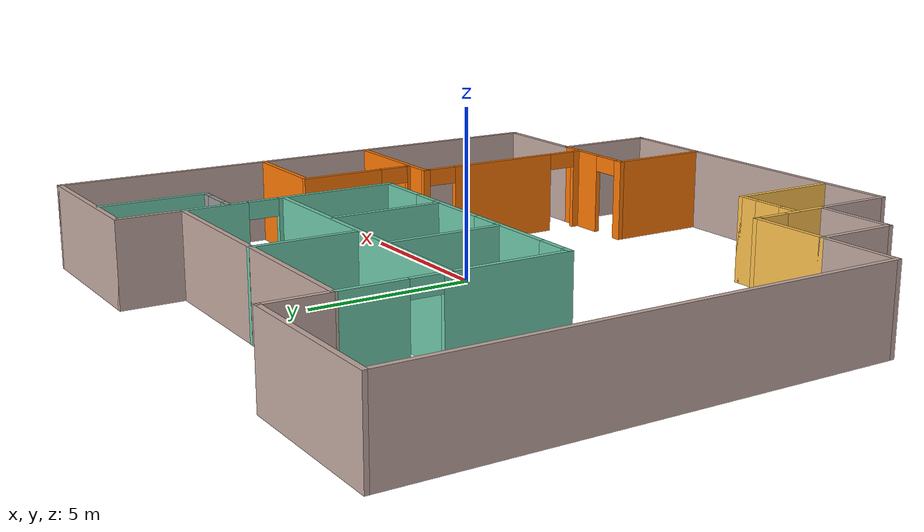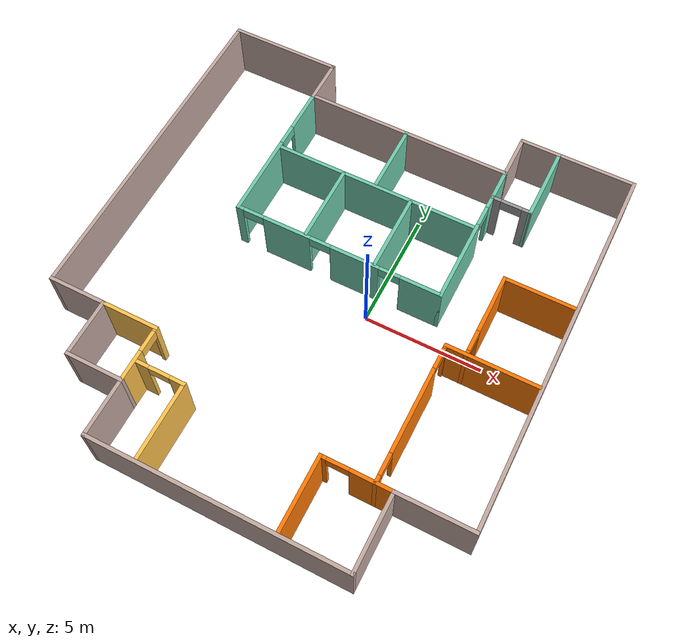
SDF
<?xml version='1.0'?>
<sdf version='1.6'>
  <model name='mybuilding'>
    <pose frame=''>-1.73634 -0.275977 0 0 -0 0</pose>
    <link name='Wall_0'>
      <collision name='Wall_0_Collision'>
        <geometry>
          <box>
            <size>4.85 0.15 2.5</size>
          </box>
        </geometry>
        <pose frame=''>0 0 1.25 0 -0 0</pose>
      </collision>
      <visual name='Wall_0_Visual'>
        <pose frame=''>0 0 1.25 0 -0 0</pose>
        <geometry>
          <box>
            <size>4.85 0.15 2.5</size>
          </box>
        </geometry>
        <material>
          <script>
            <uri>file://media/materials/scripts/gazebo.material</uri>
            <name>Gazebo/Grey</name>
          </script>
          <ambient>0.760784 0.662745 0.627451 1</ambient>
        </material>
        <meta>
          <layer>0</layer>
        </meta>
      </visual>
      <pose frame=''>-6.85 9.445 0 0 -0 0</pose>
    </link>
    <link name='Wall_1'>
      <collision name='Wall_1_Collision'>
        <geometry>
          <box>
            <size>1.92941 0.15 2.5</size>
          </box>
        </geometry>
        <pose frame=''>0 0 1.25 0 -0 0</pose>
      </collision>
      <visual name='Wall_1_Visual'>
        <pose frame=''>0 0 1.25 0 -0 0</pose>
        <geometry>
          <box>
            <size>1.92941 0.15 2.5</size>
          </box>
        </geometry>
        <material>
          <script>
            <uri>file://media/materials/scripts/gazebo.material</uri>
            <name>Gazebo/Grey</name>
          </script>
          <ambient>0.760784 0.662745 0.627451 1</ambient>
        </material>
        <meta>
          <layer>0</layer>
        </meta>
      </visual>
      <pose frame=''>-4.5 8.54529 0 0 0 -1.5708</pose>
    </link>
    <link name='Wall_10'>
      <collision name='Wall_10_Collision'>
        <geometry>
          <box>
            <size>10.75 0.15 2.5</size>
          </box>
        </geometry>
        <pose frame=''>0 0 1.25 0 -0 0</pose>
      </collision>
      <visual name='Wall_10_Visual'>
        <pose frame=''>0 0 1.25 0 -0 0</pose>
        <geometry>
          <box>
            <size>10.75 0.15 2.5</size>
          </box>
        </geometry>
        <material>
          <script>
            <uri>file://media/materials/scripts/gazebo.material</uri>
            <name>Gazebo/Grey</name>
          </script>
          <ambient>0.760784 0.662745 0.627451 1</ambient>
        </material>
        <meta>
          <layer>0</layer>
        </meta>
      </visual>
      <pose frame=''>0.8 -9.475 0 0 -0 3.14159</pose>
    </link>
    <link name='Wall_12'>
      <collision name='Wall_12_Collision'>
        <geometry>
          <box>
            <size>2.5 0.15 2.5</size>
          </box>
        </geometry>
        <pose frame=''>0 0 1.25 0 -0 0</pose>
      </collision>
      <visual name='Wall_12_Visual'>
        <pose frame=''>0 0 1.25 0 -0 0</pose>
        <geometry>
          <box>
            <size>2.5 0.15 2.5</size>
          </box>
        </geometry>
        <material>
          <script>
            <uri>file://media/materials/scripts/gazebo.material</uri>
            <name>Gazebo/Grey</name>
          </script>
          <ambient>0.760784 0.662745 0.627451 1</ambient>
        </material>
        <meta>
          <layer>0</layer>
        </meta>
      </visual>
      <pose frame=''>-4.5 -8.3 0 0 -0 1.5708</pose>
    </link>
    <link name='Wall_13'>
      <collision name='Wall_13_Collision'>
        <geometry>
          <box>
            <size>2.5 0.15 2.5</size>
          </box>
        </geometry>
        <pose frame=''>0 0 1.25 0 -0 0</pose>
      </collision>
      <visual name='Wall_13_Visual'>
        <pose frame=''>0 0 1.25 0 -0 0</pose>
        <geometry>
          <box>
            <size>2.5 0.15 2.5</size>
          </box>
        </geometry>
        <material>
          <script>
            <uri>file://media/materials/scripts/gazebo.material</uri>
            <name>Gazebo/Grey</name>
          </script>
          <ambient>0.760784 0.662745 0.627451 1</ambient>
        </material>
        <meta>
          <layer>0</layer>
        </meta>
      </visual>
      <pose frame=''>-5.675 -7.125 0 0 -0 3.14159</pose>
    </link>
    <link name='Wall_14'>
      <collision name='Wall_14_Collision'>
        <geometry>
          <box>
            <size>2.5 0.15 2.5</size>
          </box>
        </geometry>
        <pose frame=''>0 0 1.25 0 -0 0</pose>
      </collision>
      <visual name='Wall_14_Visual'>
        <pose frame=''>0 0 1.25 0 -0 0</pose>
        <geometry>
          <box>
            <size>2.5 0.15 2.5</size>
          </box>
        </geometry>
        <material>
          <script>
            <uri>file://media/materials/scripts/gazebo.material</uri>
            <name>Gazebo/Grey</name>
          </script>
          <ambient>0.760784 0.662745 0.627451 1</ambient>
        </material>
        <meta>
          <layer>0</layer>
        </meta>
      </visual>
      <pose frame=''>-6.85 -5.95 0 0 -0 1.5708</pose>
    </link>
    <link name='Wall_15'>
      <collision name='Wall_15_Collision'>
        <geometry>
          <box>
            <size>2.5 0.15 2.5</size>
          </box>
        </geometry>
        <pose frame=''>0 0 1.25 0 -0 0</pose>
      </collision>
      <visual name='Wall_15_Visual'>
        <pose frame=''>0 0 1.25 0 -0 0</pose>
        <geometry>
          <box>
            <size>2.5 0.15 2.5</size>
          </box>
        </geometry>
        <material>
          <script>
            <uri>file://media/materials/scripts/gazebo.material</uri>
            <name>Gazebo/Grey</name>
          </script>
          <ambient>0.760784 0.662745 0.627451 1</ambient>
        </material>
        <meta>
          <layer>0</layer>
        </meta>
      </visual>
      <pose frame=''>-8.025 -4.775 0 0 -0 3.14159</pose>
    </link>
    <link name='Wall_16'>
      <collision name='Wall_16_Collision'>
        <geometry>
          <box>
            <size>14.25 0.15 2.5</size>
          </box>
        </geometry>
        <pose frame=''>0 0 1.25 0 -0 0</pose>
      </collision>
      <visual name='Wall_16_Visual'>
        <pose frame=''>0 0 1.25 0 -0 0</pose>
        <geometry>
          <box>
            <size>14.25 0.15 2.5</size>
          </box>
        </geometry>
        <material>
          <script>
            <uri>file://media/materials/scripts/gazebo.material</uri>
            <name>Gazebo/Grey</name>
          </script>
          <ambient>0.760784 0.662745 0.627451 1</ambient>
        </material>
        <meta>
          <layer>0</layer>
        </meta>
      </visual>
      <pose frame=''>-9.2 2.275 0 0 -0 1.5708</pose>
    </link>
    <link name='Wall_18'>
      <collision name='Wall_18_Collision'>
        <geometry>
          <box>
            <size>2.5 0.15 2.5</size>
          </box>
        </geometry>
        <pose frame=''>0 0 1.25 0 -0 0</pose>
      </collision>
      <visual name='Wall_18_Visual'>
        <pose frame=''>0 0 1.25 0 -0 0</pose>
        <geometry>
          <box>
            <size>2.5 0.15 2.5</size>
          </box>
        </geometry>
        <material>
          <script>
            <uri>file://media/materials/scripts/gazebo.material</uri>
            <name>Gazebo/Grey</name>
          </script>
          <ambient>1 0.764706 0.305882 1</ambient>
        </material>
        <meta>
          <layer>0</layer>
        </meta>
      </visual>
      <pose frame=''>-5.675 -4.775 0 0 -0 0</pose>
    </link>
    <link name='Wall_19'>
      <pose frame=''>-4.5 -5.95 0 0 0 -1.5708</pose>
      <visual name='Wall_19_Visual_0'>
        <pose frame=''>-1.13558 0 1.25 0 -0 0</pose>
        <geometry>
          <box>
            <size>0.228848 0.15 2.5</size>
          </box>
        </geometry>
        <material>
          <script>
            <uri>file://media/materials/scripts/gazebo.material</uri>
            <name>Gazebo/Grey</name>
          </script>
          <ambient>1 0.764706 0.305882 1</ambient>
        </material>
        <meta>
          <layer>0</layer>
        </meta>
      </visual>
      <collision name='Wall_19_Collision_0'>
        <geometry>
          <box>
            <size>0.228848 0.15 2.5</size>
          </box>
        </geometry>
        <pose frame=''>-1.13558 0 1.25 0 -0 0</pose>
      </collision>
      <visual name='Wall_19_Visual_1'>
        <pose frame=''>0.564424 0 1.25 0 -0 0</pose>
        <geometry>
          <box>
            <size>1.37115 0.15 2.5</size>
          </box>
        </geometry>
        <material>
          <script>
            <uri>file://media/materials/scripts/gazebo.material</uri>
            <name>Gazebo/Grey</name>
          </script>
          <ambient>1 0.764706 0.305882 1</ambient>
        </material>
        <meta>
          <layer>0</layer>
        </meta>
      </visual>
      <collision name='Wall_19_Collision_1'>
        <geometry>
          <box>
            <size>1.37115 0.15 2.5</size>
          </box>
        </geometry>
        <pose frame=''>0.564424 0 1.25 0 -0 0</pose>
      </collision>
      <visual name='Wall_19_Visual_2'>
        <pose frame=''>-0.571152 0 2.25 0 -0 0</pose>
        <geometry>
          <box>
            <size>0.9 0.15 0.5</size>
          </box>
        </geometry>
        <material>
          <script>
            <uri>file://media/materials/scripts/gazebo.material</uri>
            <name>Gazebo/Grey</name>
          </script>
          <ambient>1 0.764706 0.305882 1</ambient>
        </material>
        <meta>
          <layer>0</layer>
        </meta>
      </visual>
      <collision name='Wall_19_Collision_2'>
        <geometry>
          <box>
            <size>0.9 0.15 0.5</size>
          </box>
        </geometry>
        <pose frame=''>-0.571152 0 2.25 0 -0 0</pose>
      </collision>
    </link>
    <link name='Wall_2'>
      <collision name='Wall_2_Collision'>
        <geometry>
          <box>
            <size>9 0.15 2.5</size>
          </box>
        </geometry>
        <pose frame=''>0 0 1.25 0 -0 0</pose>
      </collision>
      <visual name='Wall_2_Visual'>
        <pose frame=''>0 0 1.25 0 -0 0</pose>
        <geometry>
          <box>
            <size>9 0.15 2.5</size>
          </box>
        </geometry>
        <material>
          <script>
            <uri>file://media/materials/scripts/gazebo.material</uri>
            <name>Gazebo/Grey</name>
          </script>
          <ambient>0.760784 0.662745 0.627451 1</ambient>
        </material>
        <meta>
          <layer>0</layer>
        </meta>
      </visual>
      <pose frame=''>-0.075 7.6403 0 0 0 -0.003457</pose>
    </link>
    <link name='Wall_21'>
      <pose frame=''>-3.43491 -6.23586 0 0 -0 0</pose>
      <visual name='Wall_21_Visual_0'>
        <pose frame=''>-0.787798 0 1.25 0 -0 0</pose>
        <geometry>
          <box>
            <size>0.674404 0.15 2.5</size>
          </box>
        </geometry>
        <material>
          <script>
            <uri>file://media/materials/scripts/gazebo.material</uri>
            <name>Gazebo/Grey</name>
          </script>
          <ambient>1 0.764706 0.305882 1</ambient>
        </material>
        <meta>
          <layer>0</layer>
        </meta>
      </visual>
      <collision name='Wall_21_Collision_0'>
        <geometry>
          <box>
            <size>0.674404 0.15 2.5</size>
          </box>
        </geometry>
        <pose frame=''>-0.787798 0 1.25 0 -0 0</pose>
      </collision>
      <visual name='Wall_21_Visual_1'>
        <pose frame=''>0.787202 0 1.25 0 -0 0</pose>
        <geometry>
          <box>
            <size>0.675596 0.15 2.5</size>
          </box>
        </geometry>
        <material>
          <script>
            <uri>file://media/materials/scripts/gazebo.material</uri>
            <name>Gazebo/Grey</name>
          </script>
          <ambient>1 0.764706 0.305882 1</ambient>
        </material>
        <meta>
          <layer>0</layer>
        </meta>
      </visual>
      <collision name='Wall_21_Collision_1'>
        <geometry>
          <box>
            <size>0.675596 0.15 2.5</size>
          </box>
        </geometry>
        <pose frame=''>0.787202 0 1.25 0 -0 0</pose>
      </collision>
      <visual name='Wall_21_Visual_2'>
        <pose frame=''>-0.000596 0 2.25 0 -0 0</pose>
        <geometry>
          <box>
            <size>0.9 0.15 0.5</size>
          </box>
        </geometry>
        <material>
          <script>
            <uri>file://media/materials/scripts/gazebo.material</uri>
            <name>Gazebo/Grey</name>
          </script>
          <ambient>1 0.764706 0.305882 1</ambient>
        </material>
        <meta>
          <layer>0</layer>
        </meta>
      </visual>
      <collision name='Wall_21_Collision_2'>
        <geometry>
          <box>
            <size>0.9 0.15 0.5</size>
          </box>
        </geometry>
        <pose frame=''>-0.000596 0 2.25 0 -0 0</pose>
      </collision>
    </link>
    <link name='Wall_22'>
      <collision name='Wall_22_Collision'>
        <geometry>
          <box>
            <size>3.25 0.15 2.5</size>
          </box>
        </geometry>
        <pose frame=''>0 0 1.25 0 -0 0</pose>
      </collision>
      <visual name='Wall_22_Visual'>
        <pose frame=''>0 0 1.25 0 -0 0</pose>
        <geometry>
          <box>
            <size>3.25 0.15 2.5</size>
          </box>
        </geometry>
        <material>
          <script>
            <uri>file://media/materials/scripts/gazebo.material</uri>
            <name>Gazebo/Grey</name>
          </script>
          <ambient>1 0.764706 0.305882 1</ambient>
        </material>
        <meta>
          <layer>0</layer>
        </meta>
      </visual>
      <pose frame=''>-2.3849 -7.78586 0 0 0 -1.5708</pose>
    </link>
    <link name='Wall_24'>
      <pose frame=''>4.675 -6.375 0 0 -0 3.14159</pose>
      <visual name='Wall_24_Visual_0'>
        <pose frame=''>-0.610153 0 1.25 0 -0 0</pose>
        <geometry>
          <box>
            <size>1.77969 0.15 2.5</size>
          </box>
        </geometry>
        <material>
          <script>
            <uri>file://media/materials/scripts/gazebo.material</uri>
            <name>Gazebo/Grey</name>
          </script>
          <ambient>0.996078 0.47451 0.0196078 1</ambient>
        </material>
        <meta>
          <layer>0</layer>
        </meta>
      </visual>
      <collision name='Wall_24_Collision_0'>
        <geometry>
          <box>
            <size>1.77969 0.15 2.5</size>
          </box>
        </geometry>
        <pose frame=''>-0.610153 0 1.25 0 -0 0</pose>
      </collision>
      <visual name='Wall_24_Visual_1'>
        <pose frame=''>1.33985 0 1.25 0 -0 0</pose>
        <geometry>
          <box>
            <size>0.320306 0.15 2.5</size>
          </box>
        </geometry>
        <material>
          <script>
            <uri>file://media/materials/scripts/gazebo.material</uri>
            <name>Gazebo/Grey</name>
          </script>
          <ambient>0.996078 0.47451 0.0196078 1</ambient>
        </material>
        <meta>
          <layer>0</layer>
        </meta>
      </visual>
      <collision name='Wall_24_Collision_1'>
        <geometry>
          <box>
            <size>0.320306 0.15 2.5</size>
          </box>
        </geometry>
        <pose frame=''>1.33985 0 1.25 0 -0 0</pose>
      </collision>
      <visual name='Wall_24_Visual_2'>
        <pose frame=''>0.729694 0 2.25 0 -0 0</pose>
        <geometry>
          <box>
            <size>0.9 0.15 0.5</size>
          </box>
        </geometry>
        <material>
          <script>
            <uri>file://media/materials/scripts/gazebo.material</uri>
            <name>Gazebo/Grey</name>
          </script>
          <ambient>0.996078 0.47451 0.0196078 1</ambient>
        </material>
        <meta>
          <layer>0</layer>
        </meta>
      </visual>
      <collision name='Wall_24_Collision_2'>
        <geometry>
          <box>
            <size>0.9 0.15 0.5</size>
          </box>
        </geometry>
        <pose frame=''>0.729694 0 2.25 0 -0 0</pose>
      </collision>
    </link>
    <link name='Wall_25'>
      <collision name='Wall_25_Collision'>
        <geometry>
          <box>
            <size>3.25 0.15 2.5</size>
          </box>
        </geometry>
        <pose frame=''>0 0 1.25 0 -0 0</pose>
      </collision>
      <visual name='Wall_25_Visual'>
        <pose frame=''>0 0 1.25 0 -0 0</pose>
        <geometry>
          <box>
            <size>3.25 0.15 2.5</size>
          </box>
        </geometry>
        <material>
          <script>
            <uri>file://media/materials/scripts/gazebo.material</uri>
            <name>Gazebo/Grey</name>
          </script>
          <ambient>0.996078 0.47451 0.0196078 1</ambient>
        </material>
        <meta>
          <layer>0</layer>
        </meta>
      </visual>
      <pose frame=''>3.25 -7.925 0 0 0 -1.5708</pose>
    </link>
    <link name='Wall_28'>
      <pose frame=''>5.39698 -3.45078 0 0 -0 1.5708</pose>
      <visual name='Wall_28_Visual_0'>
        <pose frame=''>-2.81146 0 1.25 0 -0 0</pose>
        <geometry>
          <box>
            <size>0.377073 0.15 2.5</size>
          </box>
        </geometry>
        <material>
          <script>
            <uri>file://media/materials/scripts/gazebo.material</uri>
            <name>Gazebo/Grey</name>
          </script>
          <ambient>0.996078 0.47451 0.0196078 1</ambient>
        </material>
        <meta>
          <layer>0</layer>
        </meta>
      </visual>
      <collision name='Wall_28_Collision_0'>
        <geometry>
          <box>
            <size>0.377073 0.15 2.5</size>
          </box>
        </geometry>
        <pose frame=''>-2.81146 0 1.25 0 -0 0</pose>
      </collision>
      <visual name='Wall_28_Visual_1'>
        <pose frame=''>0.080213 0 1.25 0 -0 0</pose>
        <geometry>
          <box>
            <size>3.60628 0.15 2.5</size>
          </box>
        </geometry>
        <material>
          <script>
            <uri>file://media/materials/scripts/gazebo.material</uri>
            <name>Gazebo/Grey</name>
          </script>
          <ambient>0.996078 0.47451 0.0196078 1</ambient>
        </material>
        <meta>
          <layer>0</layer>
        </meta>
      </visual>
      <collision name='Wall_28_Collision_1'>
        <geometry>
          <box>
            <size>3.60628 0.15 2.5</size>
          </box>
        </geometry>
        <pose frame=''>0.080213 0 1.25 0 -0 0</pose>
      </collision>
      <visual name='Wall_28_Visual_2'>
        <pose frame=''>2.89168 0 1.25 0 -0 0</pose>
        <geometry>
          <box>
            <size>0.216648 0.15 2.5</size>
          </box>
        </geometry>
        <material>
          <script>
            <uri>file://media/materials/scripts/gazebo.material</uri>
            <name>Gazebo/Grey</name>
          </script>
          <ambient>0.996078 0.47451 0.0196078 1</ambient>
        </material>
        <meta>
          <layer>0</layer>
        </meta>
      </visual>
      <collision name='Wall_28_Collision_2'>
        <geometry>
          <box>
            <size>0.216648 0.15 2.5</size>
          </box>
        </geometry>
        <pose frame=''>2.89168 0 1.25 0 -0 0</pose>
      </collision>
      <visual name='Wall_28_Visual_3'>
        <pose frame=''>-2.17293 0 2.25 0 -0 0</pose>
        <geometry>
          <box>
            <size>0.9 0.15 0.5</size>
          </box>
        </geometry>
        <material>
          <script>
            <uri>file://media/materials/scripts/gazebo.material</uri>
            <name>Gazebo/Grey</name>
          </script>
          <ambient>0.996078 0.47451 0.0196078 1</ambient>
        </material>
        <meta>
          <layer>0</layer>
        </meta>
      </visual>
      <collision name='Wall_28_Collision_3'>
        <geometry>
          <box>
            <size>0.9 0.15 0.5</size>
          </box>
        </geometry>
        <pose frame=''>-2.17293 0 2.25 0 -0 0</pose>
      </collision>
      <visual name='Wall_28_Visual_4'>
        <pose frame=''>2.33335 0 2.25 0 -0 0</pose>
        <geometry>
          <box>
            <size>0.9 0.15 0.5</size>
          </box>
        </geometry>
        <material>
          <script>
            <uri>file://media/materials/scripts/gazebo.material</uri>
            <name>Gazebo/Grey</name>
          </script>
          <ambient>0.996078 0.47451 0.0196078 1</ambient>
        </material>
        <meta>
          <layer>0</layer>
        </meta>
      </visual>
      <collision name='Wall_28_Collision_4'>
        <geometry>
          <box>
            <size>0.9 0.15 0.5</size>
          </box>
        </geometry>
        <pose frame=''>2.33335 0 2.25 0 -0 0</pose>
      </collision>
    </link>
    <link name='Wall_3'>
      <collision name='Wall_3_Collision'>
        <geometry>
          <box>
            <size>2 0.15 2.5</size>
          </box>
        </geometry>
        <pose frame=''>0 0 1.25 0 -0 0</pose>
      </collision>
      <visual name='Wall_3_Visual'>
        <pose frame=''>0 0 1.25 0 -0 0</pose>
        <geometry>
          <box>
            <size>2 0.15 2.5</size>
          </box>
        </geometry>
        <material>
          <script>
            <uri>file://media/materials/scripts/gazebo.material</uri>
            <name>Gazebo/Grey</name>
          </script>
          <ambient>0.760784 0.662745 0.627451 1</ambient>
        </material>
        <meta>
          <layer>0</layer>
        </meta>
      </visual>
      <pose frame=''>4.35 8.55 0 0 -0 1.5708</pose>
    </link>
    <link name='Wall_32'>
      <collision name='Wall_32_Collision'>
        <geometry>
          <box>
            <size>3.85 0.15 2.5</size>
          </box>
        </geometry>
        <pose frame=''>0 0 1.25 0 -0 0</pose>
      </collision>
      <visual name='Wall_32_Visual'>
        <pose frame=''>0 0 1.25 0 -0 0</pose>
        <geometry>
          <box>
            <size>3.85 0.15 2.5</size>
          </box>
        </geometry>
        <material>
          <script>
            <uri>file://media/materials/scripts/gazebo.material</uri>
            <name>Gazebo/Grey</name>
          </script>
          <ambient>0.996078 0.47451 0.0196078 1</ambient>
        </material>
        <meta>
          <layer>0</layer>
        </meta>
      </visual>
      <pose frame=''>7.24698 -0.525782 0 0 -0 0</pose>
    </link>
    <link name='Wall_34'>
      <pose frame=''>-4.5 4.48059 0 0 0 -1.5708</pose>
      <visual name='Wall_34_Visual_0'>
        <pose frame=''>-2.27107 0 1.25 0 -0 0</pose>
        <geometry>
          <box>
            <size>1.95787 0.15 2.5</size>
          </box>
        </geometry>
        <material>
          <script>
            <uri>file://media/materials/scripts/gazebo.material</uri>
            <name>Gazebo/Grey</name>
          </script>
          <ambient>0.435294 0.796078 0.67451 1</ambient>
        </material>
        <meta>
          <layer>0</layer>
        </meta>
      </visual>
      <collision name='Wall_34_Collision_0'>
        <geometry>
          <box>
            <size>1.95787 0.15 2.5</size>
          </box>
        </geometry>
        <pose frame=''>-2.27107 0 1.25 0 -0 0</pose>
      </collision>
      <visual name='Wall_34_Visual_1'>
        <pose frame=''>1.42893 0 1.25 0 -0 0</pose>
        <geometry>
          <box>
            <size>3.64213 0.15 2.5</size>
          </box>
        </geometry>
        <material>
          <script>
            <uri>file://media/materials/scripts/gazebo.material</uri>
            <name>Gazebo/Grey</name>
          </script>
          <ambient>0.435294 0.796078 0.67451 1</ambient>
        </material>
        <meta>
          <layer>0</layer>
        </meta>
      </visual>
      <collision name='Wall_34_Collision_1'>
        <geometry>
          <box>
            <size>3.64213 0.15 2.5</size>
          </box>
        </geometry>
        <pose frame=''>1.42893 0 1.25 0 -0 0</pose>
      </collision>
      <visual name='Wall_34_Visual_2'>
        <pose frame=''>-0.842134 0 2.25 0 -0 0</pose>
        <geometry>
          <box>
            <size>0.9 0.15 0.5</size>
          </box>
        </geometry>
        <material>
          <script>
            <uri>file://media/materials/scripts/gazebo.material</uri>
            <name>Gazebo/Grey</name>
          </script>
          <ambient>0.435294 0.796078 0.67451 1</ambient>
        </material>
        <meta>
          <layer>0</layer>
        </meta>
      </visual>
      <collision name='Wall_34_Collision_2'>
        <geometry>
          <box>
            <size>0.9 0.15 0.5</size>
          </box>
        </geometry>
        <pose frame=''>-0.842134 0 2.25 0 -0 0</pose>
      </collision>
    </link>
    <link name='Wall_36'>
      <pose frame=''>-0.075 1.30559 0 0 -0 0</pose>
      <visual name='Wall_36_Visual_0'>
        <pose frame=''>-4.3354 0 1.25 0 -0 0</pose>
        <geometry>
          <box>
            <size>0.329192 0.15 2.5</size>
          </box>
        </geometry>
        <material>
          <script>
            <uri>file://media/materials/scripts/gazebo.material</uri>
            <name>Gazebo/Grey</name>
          </script>
          <ambient>0.435294 0.796078 0.67451 1</ambient>
        </material>
        <meta>
          <layer>0</layer>
        </meta>
      </visual>
      <collision name='Wall_36_Collision_0'>
        <geometry>
          <box>
            <size>0.329192 0.15 2.5</size>
          </box>
        </geometry>
        <pose frame=''>-4.3354 0 1.25 0 -0 0</pose>
      </collision>
      <visual name='Wall_36_Visual_1'>
        <pose frame=''>-2.23035 0 1.25 0 -0 0</pose>
        <geometry>
          <box>
            <size>2.08092 0.15 2.5</size>
          </box>
        </geometry>
        <material>
          <script>
            <uri>file://media/materials/scripts/gazebo.material</uri>
            <name>Gazebo/Grey</name>
          </script>
          <ambient>0.435294 0.796078 0.67451 1</ambient>
        </material>
        <meta>
          <layer>0</layer>
        </meta>
      </visual>
      <collision name='Wall_36_Collision_1'>
        <geometry>
          <box>
            <size>2.08092 0.15 2.5</size>
          </box>
        </geometry>
        <pose frame=''>-2.23035 0 1.25 0 -0 0</pose>
      </collision>
      <visual name='Wall_36_Visual_2'>
        <pose frame=''>0.765773 0 1.25 0 -0 0</pose>
        <geometry>
          <box>
            <size>2.11133 0.15 2.5</size>
          </box>
        </geometry>
        <material>
          <script>
            <uri>file://media/materials/scripts/gazebo.material</uri>
            <name>Gazebo/Grey</name>
          </script>
          <ambient>0.435294 0.796078 0.67451 1</ambient>
        </material>
        <meta>
          <layer>0</layer>
        </meta>
      </visual>
      <collision name='Wall_36_Collision_2'>
        <geometry>
          <box>
            <size>2.11133 0.15 2.5</size>
          </box>
        </geometry>
        <pose frame=''>0.765773 0 1.25 0 -0 0</pose>
      </collision>
      <visual name='Wall_36_Visual_3'>
        <pose frame=''>3.61072 0 1.25 0 -0 0</pose>
        <geometry>
          <box>
            <size>1.77856 0.15 2.5</size>
          </box>
        </geometry>
        <material>
          <script>
            <uri>file://media/materials/scripts/gazebo.material</uri>
            <name>Gazebo/Grey</name>
          </script>
          <ambient>0.435294 0.796078 0.67451 1</ambient>
        </material>
        <meta>
          <layer>0</layer>
        </meta>
      </visual>
      <collision name='Wall_36_Collision_3'>
        <geometry>
          <box>
            <size>1.77856 0.15 2.5</size>
          </box>
        </geometry>
        <pose frame=''>3.61072 0 1.25 0 -0 0</pose>
      </collision>
      <visual name='Wall_36_Visual_4'>
        <pose frame=''>-3.72081 0 2.25 0 -0 0</pose>
        <geometry>
          <box>
            <size>0.9 0.15 0.5</size>
          </box>
        </geometry>
        <material>
          <script>
            <uri>file://media/materials/scripts/gazebo.material</uri>
            <name>Gazebo/Grey</name>
          </script>
          <ambient>0.435294 0.796078 0.67451 1</ambient>
        </material>
        <meta>
          <layer>0</layer>
        </meta>
      </visual>
      <collision name='Wall_36_Collision_4'>
        <geometry>
          <box>
            <size>0.9 0.15 0.5</size>
          </box>
        </geometry>
        <pose frame=''>-3.72081 0 2.25 0 -0 0</pose>
      </collision>
      <visual name='Wall_36_Visual_5'>
        <pose frame=''>-0.739893 0 2.25 0 -0 0</pose>
        <geometry>
          <box>
            <size>0.9 0.15 0.5</size>
          </box>
        </geometry>
        <material>
          <script>
            <uri>file://media/materials/scripts/gazebo.material</uri>
            <name>Gazebo/Grey</name>
          </script>
          <ambient>0.435294 0.796078 0.67451 1</ambient>
        </material>
        <meta>
          <layer>0</layer>
        </meta>
      </visual>
      <collision name='Wall_36_Collision_5'>
        <geometry>
          <box>
            <size>0.9 0.15 0.5</size>
          </box>
        </geometry>
        <pose frame=''>-0.739893 0 2.25 0 -0 0</pose>
      </collision>
      <visual name='Wall_36_Visual_6'>
        <pose frame=''>2.27144 0 2.25 0 -0 0</pose>
        <geometry>
          <box>
            <size>0.9 0.15 0.5</size>
          </box>
        </geometry>
        <material>
          <script>
            <uri>file://media/materials/scripts/gazebo.material</uri>
            <name>Gazebo/Grey</name>
          </script>
          <ambient>0.435294 0.796078 0.67451 1</ambient>
        </material>
        <meta>
          <layer>0</layer>
        </meta>
      </visual>
      <collision name='Wall_36_Collision_6'>
        <geometry>
          <box>
            <size>0.9 0.15 0.5</size>
          </box>
        </geometry>
        <pose frame=''>2.27144 0 2.25 0 -0 0</pose>
      </collision>
    </link>
    <link name='Wall_39'>
      <pose frame=''>4.35 4.46529 0 0 -0 1.5708</pose>
      <visual name='Wall_39_Visual_0'>
        <pose frame=''>-1.42238 0 1.25 0 -0 0</pose>
        <geometry>
          <box>
            <size>3.62464 0.15 2.5</size>
          </box>
        </geometry>
        <material>
          <script>
            <uri>file://media/materials/scripts/gazebo.material</uri>
            <name>Gazebo/Grey</name>
          </script>
          <ambient>0.435294 0.796078 0.67451 1</ambient>
        </material>
        <meta>
          <layer>0</layer>
        </meta>
      </visual>
      <collision name='Wall_39_Collision_0'>
        <geometry>
          <box>
            <size>3.62464 0.15 2.5</size>
          </box>
        </geometry>
        <pose frame=''>-1.42238 0 1.25 0 -0 0</pose>
      </collision>
      <visual name='Wall_39_Visual_1'>
        <pose frame=''>2.26232 0 1.25 0 -0 0</pose>
        <geometry>
          <box>
            <size>1.94477 0.15 2.5</size>
          </box>
        </geometry>
        <material>
          <script>
            <uri>file://media/materials/scripts/gazebo.material</uri>
            <name>Gazebo/Grey</name>
          </script>
          <ambient>0.435294 0.796078 0.67451 1</ambient>
        </material>
        <meta>
          <layer>0</layer>
        </meta>
      </visual>
      <collision name='Wall_39_Collision_1'>
        <geometry>
          <box>
            <size>1.94477 0.15 2.5</size>
          </box>
        </geometry>
        <pose frame=''>2.26232 0 1.25 0 -0 0</pose>
      </collision>
      <visual name='Wall_39_Visual_2'>
        <pose frame=''>0.839939 0 2.25 0 -0 0</pose>
        <geometry>
          <box>
            <size>0.9 0.15 0.5</size>
          </box>
        </geometry>
        <material>
          <script>
            <uri>file://media/materials/scripts/gazebo.material</uri>
            <name>Gazebo/Grey</name>
          </script>
          <ambient>0.435294 0.796078 0.67451 1</ambient>
        </material>
        <meta>
          <layer>0</layer>
        </meta>
      </visual>
      <collision name='Wall_39_Collision_2'>
        <geometry>
          <box>
            <size>0.9 0.15 0.5</size>
          </box>
        </geometry>
        <pose frame=''>0.839939 0 2.25 0 -0 0</pose>
      </collision>
    </link>
    <link name='Wall_4'>
      <collision name='Wall_4_Collision'>
        <geometry>
          <box>
            <size>5 0.15 2.5</size>
          </box>
        </geometry>
        <pose frame=''>0 0 1.25 0 -0 0</pose>
      </collision>
      <visual name='Wall_4_Visual'>
        <pose frame=''>0 0 1.25 0 -0 0</pose>
        <geometry>
          <box>
            <size>5 0.15 2.5</size>
          </box>
        </geometry>
        <material>
          <script>
            <uri>file://media/materials/scripts/gazebo.material</uri>
            <name>Gazebo/Grey</name>
          </script>
          <ambient>0.760784 0.662745 0.627451 1</ambient>
        </material>
        <meta>
          <layer>0</layer>
        </meta>
      </visual>
      <pose frame=''>6.775 9.475 0 0 -0 0</pose>
    </link>
    <link name='Wall_41'>
      <collision name='Wall_41_Collision'>
        <geometry>
          <box>
            <size>8.85 0.15 2.5</size>
          </box>
        </geometry>
        <pose frame=''>0 0 1.25 0 -0 0</pose>
      </collision>
      <visual name='Wall_41_Visual'>
        <pose frame=''>0 0 1.25 0 -0 0</pose>
        <geometry>
          <box>
            <size>8.85 0.15 2.5</size>
          </box>
        </geometry>
        <material>
          <script>
            <uri>file://media/materials/scripts/gazebo.material</uri>
            <name>Gazebo/Grey</name>
          </script>
          <ambient>0.435294 0.796078 0.67451 1</ambient>
        </material>
        <meta>
          <layer>0</layer>
        </meta>
      </visual>
      <pose frame=''>-0.116418 4.65945 0 0 -0 0</pose>
    </link>
    <link name='Wall_43'>
      <collision name='Wall_43_Collision'>
        <geometry>
          <box>
            <size>3 0.15 2.5</size>
          </box>
        </geometry>
        <pose frame=''>0 0 1.25 0 -0 0</pose>
      </collision>
      <visual name='Wall_43_Visual'>
        <pose frame=''>0 0 1.25 0 -0 0</pose>
        <geometry>
          <box>
            <size>3 0.15 2.5</size>
          </box>
        </geometry>
        <material>
          <script>
            <uri>file://media/materials/scripts/gazebo.material</uri>
            <name>Gazebo/Grey</name>
          </script>
          <ambient>0.435294 0.796078 0.67451 1</ambient>
        </material>
        <meta>
          <layer>0</layer>
        </meta>
      </visual>
      <pose frame=''>-0.095849 6.22004 0 0 0 -1.5708</pose>
    </link>
    <link name='Wall_45'>
      <collision name='Wall_45_Collision'>
        <geometry>
          <box>
            <size>3.35 0.15 2.5</size>
          </box>
        </geometry>
        <pose frame=''>0 0 1.25 0 -0 0</pose>
      </collision>
      <visual name='Wall_45_Visual'>
        <pose frame=''>0 0 1.25 0 -0 0</pose>
        <geometry>
          <box>
            <size>3.35 0.15 2.5</size>
          </box>
        </geometry>
        <material>
          <script>
            <uri>file://media/materials/scripts/gazebo.material</uri>
            <name>Gazebo/Grey</name>
          </script>
          <ambient>0.435294 0.796078 0.67451 1</ambient>
        </material>
        <meta>
          <layer>0</layer>
        </meta>
      </visual>
      <pose frame=''>-1.49929 3.00734 0 0 0 -1.5708</pose>
    </link>
    <link name='Wall_5'>
      <collision name='Wall_5_Collision'>
        <geometry>
          <box>
            <size>16 0.15 2.5</size>
          </box>
        </geometry>
        <pose frame=''>0 0 1.25 0 -0 0</pose>
      </collision>
      <visual name='Wall_5_Visual'>
        <pose frame=''>0 0 1.25 0 -0 0</pose>
        <geometry>
          <box>
            <size>16 0.15 2.5</size>
          </box>
        </geometry>
        <material>
          <script>
            <uri>file://media/materials/scripts/gazebo.material</uri>
            <name>Gazebo/Grey</name>
          </script>
          <ambient>0.760784 0.662745 0.627451 1</ambient>
        </material>
        <meta>
          <layer>0</layer>
        </meta>
      </visual>
      <pose frame=''>9.2 1.55 0 0 0 -1.5708</pose>
    </link>
    <link name='Wall_50'>
      <collision name='Wall_50_Collision'>
        <geometry>
          <box>
            <size>3.35 0.15 2.5</size>
          </box>
        </geometry>
        <pose frame=''>0 0 1.25 0 -0 0</pose>
      </collision>
      <visual name='Wall_50_Visual'>
        <pose frame=''>0 0 1.25 0 -0 0</pose>
        <geometry>
          <box>
            <size>3.35 0.15 2.5</size>
          </box>
        </geometry>
        <material>
          <script>
            <uri>file://media/materials/scripts/gazebo.material</uri>
            <name>Gazebo/Grey</name>
          </script>
          <ambient>0.435294 0.796078 0.67451 1</ambient>
        </material>
        <meta>
          <layer>0</layer>
        </meta>
      </visual>
      <pose frame=''>1.51205 2.99214 0 0 0 -1.5708</pose>
    </link>
    <link name='Wall_53'>
      <pose frame=''>5.18156 6.317 0 0 -0 0</pose>
      <visual name='Wall_53_Visual_0'>
        <pose frame=''>-0.664994 0 1.25 0 -0 0</pose>
        <geometry>
          <box>
            <size>0.420012 0.15 2.5</size>
          </box>
        </geometry>
        <material>
          <script>
            <uri>file://media/materials/scripts/gazebo.material</uri>
            <name>Gazebo/Grey</name>
          </script>
          <ambient>1 1 1 1</ambient>
        </material>
        <meta>
          <layer>0</layer>
        </meta>
      </visual>
      <collision name='Wall_53_Collision_0'>
        <geometry>
          <box>
            <size>0.420012 0.15 2.5</size>
          </box>
        </geometry>
        <pose frame=''>-0.664994 0 1.25 0 -0 0</pose>
      </collision>
      <visual name='Wall_53_Visual_1'>
        <pose frame=''>0.660006 0 1.25 0 -0 0</pose>
        <geometry>
          <box>
            <size>0.429988 0.15 2.5</size>
          </box>
        </geometry>
        <material>
          <script>
            <uri>file://media/materials/scripts/gazebo.material</uri>
            <name>Gazebo/Grey</name>
          </script>
          <ambient>1 1 1 1</ambient>
        </material>
        <meta>
          <layer>0</layer>
        </meta>
      </visual>
      <collision name='Wall_53_Collision_1'>
        <geometry>
          <box>
            <size>0.429988 0.15 2.5</size>
          </box>
        </geometry>
        <pose frame=''>0.660006 0 1.25 0 -0 0</pose>
      </collision>
      <visual name='Wall_53_Visual_2'>
        <pose frame=''>-0.004988 0 2.25 0 -0 0</pose>
        <geometry>
          <box>
            <size>0.9 0.15 0.5</size>
          </box>
        </geometry>
        <material>
          <script>
            <uri>file://media/materials/scripts/gazebo.material</uri>
            <name>Gazebo/Grey</name>
          </script>
          <ambient>1 1 1 1</ambient>
        </material>
        <meta>
          <layer>0</layer>
        </meta>
      </visual>
      <collision name='Wall_53_Collision_2'>
        <geometry>
          <box>
            <size>0.9 0.15 0.5</size>
          </box>
        </geometry>
        <pose frame=''>-0.004988 0 2.25 0 -0 0</pose>
      </collision>
    </link>
    <link name='Wall_54'>
      <collision name='Wall_54_Collision'>
        <geometry>
          <box>
            <size>3.25 0.15 2.5</size>
          </box>
        </geometry>
        <pose frame=''>0 0 1.25 0 -0 0</pose>
      </collision>
      <visual name='Wall_54_Visual'>
        <pose frame=''>0 0 1.25 0 -0 0</pose>
        <geometry>
          <box>
            <size>3.25 0.15 2.5</size>
          </box>
        </geometry>
        <material>
          <script>
            <uri>file://media/materials/scripts/gazebo.material</uri>
            <name>Gazebo/Grey</name>
          </script>
          <ambient>0.435294 0.796078 0.67451 1</ambient>
        </material>
        <meta>
          <layer>0</layer>
        </meta>
      </visual>
      <pose frame=''>5.98156 7.867 0 0 -0 1.5708</pose>
    </link>
    <link name='Wall_58'>
      <pose frame=''>6.22247 1.26586 0 0 -0 1.5708</pose>
      <visual name='Wall_58_Visual_0'>
        <pose frame=''>-1.74068 0 1.25 0 -0 0</pose>
        <geometry>
          <box>
            <size>0.268634 0.15 2.5</size>
          </box>
        </geometry>
        <material>
          <script>
            <uri>file://media/materials/scripts/gazebo.material</uri>
            <name>Gazebo/Grey</name>
          </script>
          <ambient>0.996078 0.47451 0.0196078 1</ambient>
        </material>
        <meta>
          <layer>0</layer>
        </meta>
      </visual>
      <collision name='Wall_58_Collision_0'>
        <geometry>
          <box>
            <size>0.268634 0.15 2.5</size>
          </box>
        </geometry>
        <pose frame=''>-1.74068 0 1.25 0 -0 0</pose>
      </collision>
      <visual name='Wall_58_Visual_1'>
        <pose frame=''>0.584317 0 1.25 0 -0 0</pose>
        <geometry>
          <box>
            <size>2.58137 0.15 2.5</size>
          </box>
        </geometry>
        <material>
          <script>
            <uri>file://media/materials/scripts/gazebo.material</uri>
            <name>Gazebo/Grey</name>
          </script>
          <ambient>0.996078 0.47451 0.0196078 1</ambient>
        </material>
        <meta>
          <layer>0</layer>
        </meta>
      </visual>
      <collision name='Wall_58_Collision_1'>
        <geometry>
          <box>
            <size>2.58137 0.15 2.5</size>
          </box>
        </geometry>
        <pose frame=''>0.584317 0 1.25 0 -0 0</pose>
      </collision>
      <visual name='Wall_58_Visual_2'>
        <pose frame=''>-1.15637 0 2.25 0 -0 0</pose>
        <geometry>
          <box>
            <size>0.9 0.15 0.5</size>
          </box>
        </geometry>
        <material>
          <script>
            <uri>file://media/materials/scripts/gazebo.material</uri>
            <name>Gazebo/Grey</name>
          </script>
          <ambient>0.996078 0.47451 0.0196078 1</ambient>
        </material>
        <meta>
          <layer>0</layer>
        </meta>
      </visual>
      <collision name='Wall_58_Collision_2'>
        <geometry>
          <box>
            <size>0.9 0.15 0.5</size>
          </box>
        </geometry>
        <pose frame=''>-1.15637 0 2.25 0 -0 0</pose>
      </collision>
    </link>
    <link name='Wall_59'>
      <collision name='Wall_59_Collision'>
        <geometry>
          <box>
            <size>3 0.15 2.5</size>
          </box>
        </geometry>
        <pose frame=''>0 0 1.25 0 -0 0</pose>
      </collision>
      <visual name='Wall_59_Visual'>
        <pose frame=''>0 0 1.25 0 -0 0</pose>
        <geometry>
          <box>
            <size>3 0.15 2.5</size>
          </box>
        </geometry>
        <material>
          <script>
            <uri>file://media/materials/scripts/gazebo.material</uri>
            <name>Gazebo/Grey</name>
          </script>
          <ambient>0.996078 0.47451 0.0196078 1</ambient>
        </material>
        <meta>
          <layer>0</layer>
        </meta>
      </visual>
      <pose frame=''>7.64747 3.06586 0 0 -0 0</pose>
    </link>
    <link name='Wall_7'>
      <collision name='Wall_7_Collision'>
        <geometry>
          <box>
            <size>3.25 0.15 2.5</size>
          </box>
        </geometry>
        <pose frame=''>0 0 1.25 0 -0 0</pose>
      </collision>
      <visual name='Wall_7_Visual'>
        <pose frame=''>0 0 1.25 0 -0 0</pose>
        <geometry>
          <box>
            <size>3.25 0.15 2.5</size>
          </box>
        </geometry>
        <material>
          <script>
            <uri>file://media/materials/scripts/gazebo.material</uri>
            <name>Gazebo/Grey</name>
          </script>
          <ambient>0.760784 0.662745 0.627451 1</ambient>
        </material>
        <meta>
          <layer>0</layer>
        </meta>
      </visual>
      <pose frame=''>7.65 -6.375 0 0 -0 3.14159</pose>
    </link>
    <link name='Wall_9'>
      <collision name='Wall_9_Collision'>
        <geometry>
          <box>
            <size>3.25 0.15 2.5</size>
          </box>
        </geometry>
        <pose frame=''>0 0 1.25 0 -0 0</pose>
      </collision>
      <visual name='Wall_9_Visual'>
        <pose frame=''>0 0 1.25 0 -0 0</pose>
        <geometry>
          <box>
            <size>3.25 0.15 2.5</size>
          </box>
        </geometry>
        <material>
          <script>
            <uri>file://media/materials/scripts/gazebo.material</uri>
            <name>Gazebo/Grey</name>
          </script>
          <ambient>0.760784 0.662745 0.627451 1</ambient>
        </material>
        <meta>
          <layer>0</layer>
        </meta>
      </visual>
      <pose frame=''>6.1 -7.925 0 0 0 -1.5708</pose>
    </link>
    <static>1</static>
  </model>
</sdf>
